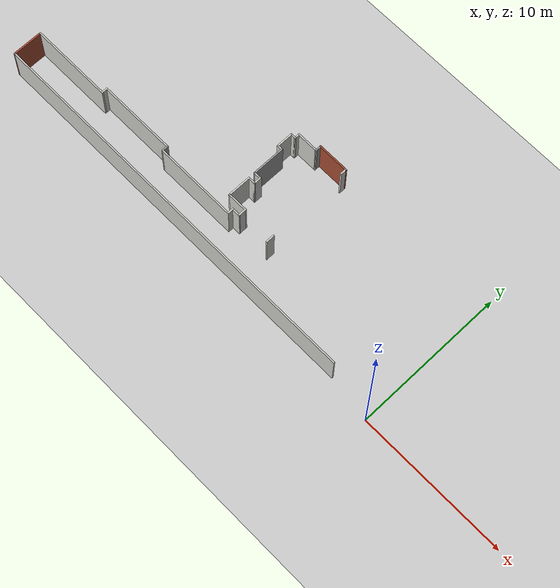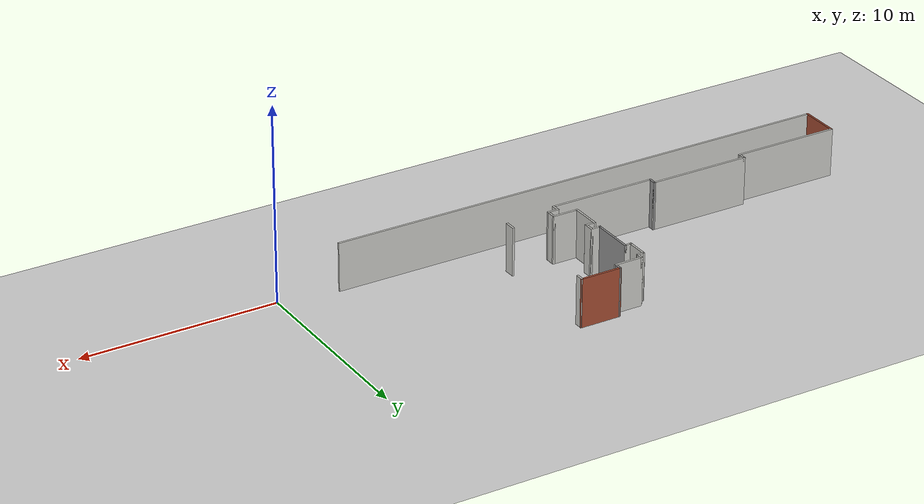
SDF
<sdf version="1.7">
 <world name="default">
  <model name="ground_plane">
   <static>1</static>
   <link name="link">
    <collision name="collision">
     <geometry><plane><normal>0 0 1</normal><size>100 100</size></plane></geometry>
     <surface><friction><ode><mu>100</mu><mu2>50</mu2></ode></friction></surface>
    </collision>
    <visual name="visual">
     <cast_shadows>0</cast_shadows>
     <geometry><plane><normal>0 0 1</normal><size>100 100</size></plane></geometry>
     <material>
      <script><uri>file://media/materials/scripts/gazebo.material</uri><name>Gazebo/Grey</name></script>
     </material>
    </visual>
   </link>
  </model>
  <model name="miraikan_5F_gate_and_elevator">
   <link name="Wall_110">
    <pose>-7.54992 11.385 0 0 -0 1.57125</pose>
    <visual name="Wall_110_Visual">
     <pose>0 0 1.25 0 -0 0</pose>
     <geometry><box><size>0.45 0.1 2.5</size></box></geometry>
     <material>
      <script><uri>file://media/materials/scripts/gazebo.material</uri><name>Gazebo/CeilingTiled</name></script>
      <ambient>1 1 1 1</ambient>
      <shader type="pixel"/>
     </material>
     <meta><layer>0</layer></meta>
    </visual>
    <collision name="Wall_110_Collision">
     <pose>0 0 1.25 0 -0 0</pose>
     <geometry><box><size>0.45 0.1 2.5</size></box></geometry>
     <surface>
      <friction>
       <ode><mu>1</mu><mu2>1</mu2><fdir1>0 0 0</fdir1><slip1>0</slip1><slip2>0</slip2></ode>
       <torsional>
        <coefficient>1</coefficient>
        <patch_radius>0</patch_radius>
        <surface_radius>0</surface_radius>
        <use_patch_radius>1</use_patch_radius>
        <ode><slip>0</slip></ode>
       </torsional>
      </friction>
      <bounce><restitution_coefficient>0</restitution_coefficient><threshold>1e+06</threshold></bounce>
      <contact>
       <collide_without_contact>0</collide_without_contact>
       <collide_without_contact_bitmask>1</collide_without_contact_bitmask>
       <collide_bitmask>1</collide_bitmask>
       <ode>
        <soft_cfm>0</soft_cfm>
        <soft_erp>0.2</soft_erp>
        <kp>1e+13</kp>
        <kd>1</kd>
        <max_vel>0.01</max_vel>
        <min_depth>0</min_depth>
       </ode>
       <bullet>
        <split_impulse>1</split_impulse>
        <split_impulse_penetration_threshold>-0.01</split_impulse_penetration_threshold>
        <soft_cfm>0</soft_cfm>
        <soft_erp>0.2</soft_erp>
        <kp>1e+13</kp>
        <kd>1</kd>
       </bullet>
      </contact>
     </surface>
    </collision>
   </link>
   <link name="Wall_136">
    <pose>-7.45991 5.57 0 0 0 -1.57043</pose>
    <visual name="Wall_136_Visual">
     <pose>0 0 1.25 0 -0 0</pose>
     <geometry><box><size>0.58 0.1 2.5</size></box></geometry>
     <material>
      <script><uri>file://media/materials/scripts/gazebo.material</uri><name>Gazebo/CeilingTiled</name></script>
      <ambient>1 1 1 1</ambient>
      <shader type="pixel"/>
     </material>
     <meta><layer>0</layer></meta>
    </visual>
    <collision name="Wall_136_Collision">
     <pose>0 0 1.25 0 -0 0</pose>
     <geometry><box><size>0.58 0.1 2.5</size></box></geometry>
     <surface>
      <friction>
       <ode><mu>1</mu><mu2>1</mu2><fdir1>0 0 0</fdir1><slip1>0</slip1><slip2>0</slip2></ode>
       <torsional>
        <coefficient>1</coefficient>
        <patch_radius>0</patch_radius>
        <surface_radius>0</surface_radius>
        <use_patch_radius>1</use_patch_radius>
        <ode><slip>0</slip></ode>
       </torsional>
      </friction>
      <bounce><restitution_coefficient>0</restitution_coefficient><threshold>1e+06</threshold></bounce>
      <contact>
       <collide_without_contact>0</collide_without_contact>
       <collide_without_contact_bitmask>1</collide_without_contact_bitmask>
       <collide_bitmask>1</collide_bitmask>
       <ode>
        <soft_cfm>0</soft_cfm>
        <soft_erp>0.2</soft_erp>
        <kp>1e+13</kp>
        <kd>1</kd>
        <max_vel>0.01</max_vel>
        <min_depth>0</min_depth>
       </ode>
       <bullet>
        <split_impulse>1</split_impulse>
        <split_impulse_penetration_threshold>-0.01</split_impulse_penetration_threshold>
        <soft_cfm>0</soft_cfm>
        <soft_erp>0.2</soft_erp>
        <kp>1e+13</kp>
        <kd>1</kd>
       </bullet>
      </contact>
     </surface>
    </collision>
   </link>
   <link name="Wall_219">
    <pose>-8.56 11.56 0 0 -0 0</pose>
    <visual name="Wall_219_Visual">
     <pose>0 0 1.25 0 -0 0</pose>
     <geometry><box><size>2.12016 0.1 2.5</size></box></geometry>
     <material>
      <script><uri>file://media/materials/scripts/gazebo.material</uri><name>Gazebo/Bricks</name></script>
      <ambient>1 1 1 1</ambient>
      <shader type="pixel"/>
     </material>
     <meta><layer>0</layer></meta>
    </visual>
    <collision name="Wall_219_Collision">
     <pose>0 0 1.25 0 -0 0</pose>
     <geometry><box><size>2.12016 0.1 2.5</size></box></geometry>
     <surface>
      <friction>
       <ode><mu>1</mu><mu2>1</mu2><fdir1>0 0 0</fdir1><slip1>0</slip1><slip2>0</slip2></ode>
       <torsional>
        <coefficient>1</coefficient>
        <patch_radius>0</patch_radius>
        <surface_radius>0</surface_radius>
        <use_patch_radius>1</use_patch_radius>
        <ode><slip>0</slip></ode>
       </torsional>
      </friction>
      <bounce><restitution_coefficient>0</restitution_coefficient><threshold>1e+06</threshold></bounce>
      <contact>
       <collide_without_contact>0</collide_without_contact>
       <collide_without_contact_bitmask>1</collide_without_contact_bitmask>
       <collide_bitmask>1</collide_bitmask>
       <ode>
        <soft_cfm>0</soft_cfm>
        <soft_erp>0.2</soft_erp>
        <kp>1e+13</kp>
        <kd>1</kd>
        <max_vel>0.01</max_vel>
        <min_depth>0</min_depth>
       </ode>
       <bullet>
        <split_impulse>1</split_impulse>
        <split_impulse_penetration_threshold>-0.01</split_impulse_penetration_threshold>
        <soft_cfm>0</soft_cfm>
        <soft_erp>0.2</soft_erp>
        <kp>1e+13</kp>
        <kd>1</kd>
       </bullet>
      </contact>
     </surface>
    </collision>
   </link>
   <link name="Wall_44">
    <pose>-10.9498 11.055 0 0 0 -1.5708</pose>
    <visual name="Wall_44_Visual">
     <pose>0 0 1.25 0 -0 0</pose>
     <geometry><box><size>0.41 0.1 2.5</size></box></geometry>
     <material>
      <script><uri>file://media/materials/scripts/gazebo.material</uri><name>Gazebo/CeilingTiled</name></script>
      <ambient>1 1 1 1</ambient>
      <shader type="pixel"/>
     </material>
     <meta><layer>0</layer></meta>
    </visual>
    <collision name="Wall_44_Collision">
     <pose>0 0 1.25 0 -0 0</pose>
     <geometry><box><size>0.41 0.1 2.5</size></box></geometry>
     <surface>
      <friction>
       <ode><mu>1</mu><mu2>1</mu2><fdir1>0 0 0</fdir1><slip1>0</slip1><slip2>0</slip2></ode>
       <torsional>
        <coefficient>1</coefficient>
        <patch_radius>0</patch_radius>
        <surface_radius>0</surface_radius>
        <use_patch_radius>1</use_patch_radius>
        <ode><slip>0</slip></ode>
       </torsional>
      </friction>
      <bounce><restitution_coefficient>0</restitution_coefficient><threshold>1e+06</threshold></bounce>
      <contact>
       <collide_without_contact>0</collide_without_contact>
       <collide_without_contact_bitmask>1</collide_without_contact_bitmask>
       <collide_bitmask>1</collide_bitmask>
       <ode>
        <soft_cfm>0</soft_cfm>
        <soft_erp>0.2</soft_erp>
        <kp>1e+13</kp>
        <kd>1</kd>
        <max_vel>0.01</max_vel>
        <min_depth>0</min_depth>
       </ode>
       <bullet>
        <split_impulse>1</split_impulse>
        <split_impulse_penetration_threshold>-0.01</split_impulse_penetration_threshold>
        <soft_cfm>0</soft_cfm>
        <soft_erp>0.2</soft_erp>
        <kp>1e+13</kp>
        <kd>1</kd>
       </bullet>
      </contact>
     </surface>
    </collision>
   </link>
   <link name="Wall_47">
    <pose>-11.1048 10.9 0 0 -0 3.14159</pose>
    <visual name="Wall_47_Visual">
     <pose>0 0 1.25 0 -0 0</pose>
     <geometry><box><size>0.41 0.1 2.5</size></box></geometry>
     <material>
      <script><uri>file://media/materials/scripts/gazebo.material</uri><name>Gazebo/CeilingTiled</name></script>
      <ambient>1 1 1 1</ambient>
      <shader type="pixel"/>
     </material>
     <meta><layer>0</layer></meta>
    </visual>
    <collision name="Wall_47_Collision">
     <pose>0 0 1.25 0 -0 0</pose>
     <geometry><box><size>0.41 0.1 2.5</size></box></geometry>
     <surface>
      <friction>
       <ode><mu>1</mu><mu2>1</mu2><fdir1>0 0 0</fdir1><slip1>0</slip1><slip2>0</slip2></ode>
       <torsional>
        <coefficient>1</coefficient>
        <patch_radius>0</patch_radius>
        <surface_radius>0</surface_radius>
        <use_patch_radius>1</use_patch_radius>
        <ode><slip>0</slip></ode>
       </torsional>
      </friction>
      <bounce><restitution_coefficient>0</restitution_coefficient><threshold>1e+06</threshold></bounce>
      <contact>
       <collide_without_contact>0</collide_without_contact>
       <collide_without_contact_bitmask>1</collide_without_contact_bitmask>
       <collide_bitmask>1</collide_bitmask>
       <ode>
        <soft_cfm>0</soft_cfm>
        <soft_erp>0.2</soft_erp>
        <kp>1e+13</kp>
        <kd>1</kd>
        <max_vel>0.01</max_vel>
        <min_depth>0</min_depth>
       </ode>
       <bullet>
        <split_impulse>1</split_impulse>
        <split_impulse_penetration_threshold>-0.01</split_impulse_penetration_threshold>
        <soft_cfm>0</soft_cfm>
        <soft_erp>0.2</soft_erp>
        <kp>1e+13</kp>
        <kd>1</kd>
       </bullet>
      </contact>
     </surface>
    </collision>
   </link>
   <link name="Wall_49">
    <pose>-11.2598 10.375 0 0 0 -1.5708</pose>
    <visual name="Wall_49_Visual">
     <pose>0 0 1.25 0 -0 0</pose>
     <geometry><box><size>1.15 0.1 2.5</size></box></geometry>
     <material>
      <script><uri>file://media/materials/scripts/gazebo.material</uri><name>Gazebo/CeilingTiled</name></script>
      <ambient>1 1 1 1</ambient>
      <shader type="pixel"/>
     </material>
     <meta><layer>0</layer></meta>
    </visual>
    <collision name="Wall_49_Collision">
     <pose>0 0 1.25 0 -0 0</pose>
     <geometry><box><size>1.15 0.1 2.5</size></box></geometry>
     <surface>
      <friction>
       <ode><mu>1</mu><mu2>1</mu2><fdir1>0 0 0</fdir1><slip1>0</slip1><slip2>0</slip2></ode>
       <torsional>
        <coefficient>1</coefficient>
        <patch_radius>0</patch_radius>
        <surface_radius>0</surface_radius>
        <use_patch_radius>1</use_patch_radius>
        <ode><slip>0</slip></ode>
       </torsional>
      </friction>
      <bounce><restitution_coefficient>0</restitution_coefficient><threshold>1e+06</threshold></bounce>
      <contact>
       <collide_without_contact>0</collide_without_contact>
       <collide_without_contact_bitmask>1</collide_without_contact_bitmask>
       <collide_bitmask>1</collide_bitmask>
       <ode>
        <soft_cfm>0</soft_cfm>
        <soft_erp>0.2</soft_erp>
        <kp>1e+13</kp>
        <kd>1</kd>
        <max_vel>0.01</max_vel>
        <min_depth>0</min_depth>
       </ode>
       <bullet>
        <split_impulse>1</split_impulse>
        <split_impulse_penetration_threshold>-0.01</split_impulse_penetration_threshold>
        <soft_cfm>0</soft_cfm>
        <soft_erp>0.2</soft_erp>
        <kp>1e+13</kp>
        <kd>1</kd>
       </bullet>
      </contact>
     </surface>
    </collision>
   </link>
   <link name="Wall_51">
    <pose>-11.1048 9.84996 0 0 -0 0</pose>
    <visual name="Wall_51_Visual">
     <pose>0 0 1.25 0 -0 0</pose>
     <geometry><box><size>0.41 0.1 2.5</size></box></geometry>
     <material>
      <script><uri>file://media/materials/scripts/gazebo.material</uri><name>Gazebo/CeilingTiled</name></script>
      <ambient>1 1 1 1</ambient>
      <shader type="pixel"/>
     </material>
     <meta><layer>0</layer></meta>
    </visual>
    <collision name="Wall_51_Collision">
     <pose>0 0 1.25 0 -0 0</pose>
     <geometry><box><size>0.41 0.1 2.5</size></box></geometry>
     <surface>
      <friction>
       <ode><mu>1</mu><mu2>1</mu2><fdir1>0 0 0</fdir1><slip1>0</slip1><slip2>0</slip2></ode>
       <torsional>
        <coefficient>1</coefficient>
        <patch_radius>0</patch_radius>
        <surface_radius>0</surface_radius>
        <use_patch_radius>1</use_patch_radius>
        <ode><slip>0</slip></ode>
       </torsional>
      </friction>
      <bounce><restitution_coefficient>0</restitution_coefficient><threshold>1e+06</threshold></bounce>
      <contact>
       <collide_without_contact>0</collide_without_contact>
       <collide_without_contact_bitmask>1</collide_without_contact_bitmask>
       <collide_bitmask>1</collide_bitmask>
       <ode>
        <soft_cfm>0</soft_cfm>
        <soft_erp>0.2</soft_erp>
        <kp>1e+13</kp>
        <kd>1</kd>
        <max_vel>0.01</max_vel>
        <min_depth>0</min_depth>
       </ode>
       <bullet>
        <split_impulse>1</split_impulse>
        <split_impulse_penetration_threshold>-0.01</split_impulse_penetration_threshold>
        <soft_cfm>0</soft_cfm>
        <soft_erp>0.2</soft_erp>
        <kp>1e+13</kp>
        <kd>1</kd>
       </bullet>
      </contact>
     </surface>
    </collision>
   </link>
   <link name="Wall_53">
    <pose>-10.9498 8.79496 0 0 0 -1.5708</pose>
    <visual name="Wall_53_Visual">
     <pose>0 0 1.25 0 -0 0</pose>
     <geometry><box><size>2.21 0.1 2.5</size></box></geometry>
     <material>
      <script><uri>file://media/materials/scripts/gazebo.material</uri><name>Gazebo/Grey</name></script>
      <ambient>1 1 1 1</ambient>
      <shader type="pixel"/>
     </material>
     <meta><layer>0</layer></meta>
    </visual>
    <collision name="Wall_53_Collision">
     <pose>0 0 1.25 0 -0 0</pose>
     <geometry><box><size>2.21 0.1 2.5</size></box></geometry>
     <surface>
      <friction>
       <ode><mu>1</mu><mu2>1</mu2><fdir1>0 0 0</fdir1><slip1>0</slip1><slip2>0</slip2></ode>
       <torsional>
        <coefficient>1</coefficient>
        <patch_radius>0</patch_radius>
        <surface_radius>0</surface_radius>
        <use_patch_radius>1</use_patch_radius>
        <ode><slip>0</slip></ode>
       </torsional>
      </friction>
      <bounce><restitution_coefficient>0</restitution_coefficient><threshold>1e+06</threshold></bounce>
      <contact>
       <collide_without_contact>0</collide_without_contact>
       <collide_without_contact_bitmask>1</collide_without_contact_bitmask>
       <collide_bitmask>1</collide_bitmask>
       <ode>
        <soft_cfm>0</soft_cfm>
        <soft_erp>0.2</soft_erp>
        <kp>1e+13</kp>
        <kd>1</kd>
        <max_vel>0.01</max_vel>
        <min_depth>0</min_depth>
       </ode>
       <bullet>
        <split_impulse>1</split_impulse>
        <split_impulse_penetration_threshold>-0.01</split_impulse_penetration_threshold>
        <soft_cfm>0</soft_cfm>
        <soft_erp>0.2</soft_erp>
        <kp>1e+13</kp>
        <kd>1</kd>
       </bullet>
      </contact>
     </surface>
    </collision>
   </link>
   <link name="Wall_55">
    <pose>-10.7248 7.73996 0 0 -0 0</pose>
    <visual name="Wall_55_Visual">
     <pose>0 0 1.25 0 -0 0</pose>
     <geometry><box><size>0.55 0.1 2.5</size></box></geometry>
     <material>
      <script><uri>file://media/materials/scripts/gazebo.material</uri><name>Gazebo/CeilingTiled</name></script>
      <ambient>1 1 1 1</ambient>
      <shader type="pixel"/>
     </material>
     <meta><layer>0</layer></meta>
    </visual>
    <collision name="Wall_55_Collision">
     <pose>0 0 1.25 0 -0 0</pose>
     <geometry><box><size>0.55 0.1 2.5</size></box></geometry>
     <surface>
      <friction>
       <ode><mu>1</mu><mu2>1</mu2><fdir1>0 0 0</fdir1><slip1>0</slip1><slip2>0</slip2></ode>
       <torsional>
        <coefficient>1</coefficient>
        <patch_radius>0</patch_radius>
        <surface_radius>0</surface_radius>
        <use_patch_radius>1</use_patch_radius>
        <ode><slip>0</slip></ode>
       </torsional>
      </friction>
      <bounce><restitution_coefficient>0</restitution_coefficient><threshold>1e+06</threshold></bounce>
      <contact>
       <collide_without_contact>0</collide_without_contact>
       <collide_without_contact_bitmask>1</collide_without_contact_bitmask>
       <collide_bitmask>1</collide_bitmask>
       <ode>
        <soft_cfm>0</soft_cfm>
        <soft_erp>0.2</soft_erp>
        <kp>1e+13</kp>
        <kd>1</kd>
        <max_vel>0.01</max_vel>
        <min_depth>0</min_depth>
       </ode>
       <bullet>
        <split_impulse>1</split_impulse>
        <split_impulse_penetration_threshold>-0.01</split_impulse_penetration_threshold>
        <soft_cfm>0</soft_cfm>
        <soft_erp>0.2</soft_erp>
        <kp>1e+13</kp>
        <kd>1</kd>
       </bullet>
      </contact>
     </surface>
    </collision>
   </link>
   <link name="Wall_57">
    <pose>-10.4998 7.51496 0 0 0 -1.5708</pose>
    <visual name="Wall_57_Visual">
     <pose>0 0 1.25 0 -0 0</pose>
     <geometry><box><size>0.55 0.1 2.5</size></box></geometry>
     <material>
      <script><uri>file://media/materials/scripts/gazebo.material</uri><name>Gazebo/CeilingTiled</name></script>
      <ambient>1 1 1 1</ambient>
      <shader type="pixel"/>
     </material>
     <meta><layer>0</layer></meta>
    </visual>
    <collision name="Wall_57_Collision">
     <pose>0 0 1.25 0 -0 0</pose>
     <geometry><box><size>0.55 0.1 2.5</size></box></geometry>
     <surface>
      <friction>
       <ode><mu>1</mu><mu2>1</mu2><fdir1>0 0 0</fdir1><slip1>0</slip1><slip2>0</slip2></ode>
       <torsional>
        <coefficient>1</coefficient>
        <patch_radius>0</patch_radius>
        <surface_radius>0</surface_radius>
        <use_patch_radius>1</use_patch_radius>
        <ode><slip>0</slip></ode>
       </torsional>
      </friction>
      <bounce><restitution_coefficient>0</restitution_coefficient><threshold>1e+06</threshold></bounce>
      <contact>
       <collide_without_contact>0</collide_without_contact>
       <collide_without_contact_bitmask>1</collide_without_contact_bitmask>
       <collide_bitmask>1</collide_bitmask>
       <ode>
        <soft_cfm>0</soft_cfm>
        <soft_erp>0.2</soft_erp>
        <kp>1e+13</kp>
        <kd>1</kd>
        <max_vel>0.01</max_vel>
        <min_depth>0</min_depth>
       </ode>
       <bullet>
        <split_impulse>1</split_impulse>
        <split_impulse_penetration_threshold>-0.01</split_impulse_penetration_threshold>
        <soft_cfm>0</soft_cfm>
        <soft_erp>0.2</soft_erp>
        <kp>1e+13</kp>
        <kd>1</kd>
       </bullet>
      </contact>
     </surface>
    </collision>
   </link>
   <link name="Wall_59">
    <pose>-10.7248 7.28996 0 0 -0 3.14159</pose>
    <visual name="Wall_59_Visual">
     <pose>0 0 1.25 0 -0 0</pose>
     <geometry><box><size>0.55 0.1 2.5</size></box></geometry>
     <material>
      <script><uri>file://media/materials/scripts/gazebo.material</uri><name>Gazebo/CeilingTiled</name></script>
      <ambient>1 1 1 1</ambient>
      <shader type="pixel"/>
     </material>
     <meta><layer>0</layer></meta>
    </visual>
    <collision name="Wall_59_Collision">
     <pose>0 0 1.25 0 -0 0</pose>
     <geometry><box><size>0.55 0.1 2.5</size></box></geometry>
     <surface>
      <friction>
       <ode><mu>1</mu><mu2>1</mu2><fdir1>0 0 0</fdir1><slip1>0</slip1><slip2>0</slip2></ode>
       <torsional>
        <coefficient>1</coefficient>
        <patch_radius>0</patch_radius>
        <surface_radius>0</surface_radius>
        <use_patch_radius>1</use_patch_radius>
        <ode><slip>0</slip></ode>
       </torsional>
      </friction>
      <bounce><restitution_coefficient>0</restitution_coefficient><threshold>1e+06</threshold></bounce>
      <contact>
       <collide_without_contact>0</collide_without_contact>
       <collide_without_contact_bitmask>1</collide_without_contact_bitmask>
       <collide_bitmask>1</collide_bitmask>
       <ode>
        <soft_cfm>0</soft_cfm>
        <soft_erp>0.2</soft_erp>
        <kp>1e+13</kp>
        <kd>1</kd>
        <max_vel>0.01</max_vel>
        <min_depth>0</min_depth>
       </ode>
       <bullet>
        <split_impulse>1</split_impulse>
        <split_impulse_penetration_threshold>-0.01</split_impulse_penetration_threshold>
        <soft_cfm>0</soft_cfm>
        <soft_erp>0.2</soft_erp>
        <kp>1e+13</kp>
        <kd>1</kd>
       </bullet>
      </contact>
     </surface>
    </collision>
   </link>
   <link name="Wall_61">
    <pose>-10.9498 6.54496 0 0 0 -1.5708</pose>
    <visual name="Wall_61_Visual">
     <pose>0 0 1.25 0 -0 0</pose>
     <geometry><box><size>1.59 0.1 2.5</size></box></geometry>
     <material>
      <script><uri>file://media/materials/scripts/gazebo.material</uri><name>Gazebo/CeilingTiled</name></script>
      <ambient>1 1 1 1</ambient>
      <shader type="pixel"/>
     </material>
     <meta><layer>0</layer></meta>
    </visual>
    <collision name="Wall_61_Collision">
     <pose>0 0 1.25 0 -0 0</pose>
     <geometry><box><size>1.59 0.1 2.5</size></box></geometry>
     <surface>
      <friction>
       <ode><mu>1</mu><mu2>1</mu2><fdir1>0 0 0</fdir1><slip1>0</slip1><slip2>0</slip2></ode>
       <torsional>
        <coefficient>1</coefficient>
        <patch_radius>0</patch_radius>
        <surface_radius>0</surface_radius>
        <use_patch_radius>1</use_patch_radius>
        <ode><slip>0</slip></ode>
       </torsional>
      </friction>
      <bounce><restitution_coefficient>0</restitution_coefficient><threshold>1e+06</threshold></bounce>
      <contact>
       <collide_without_contact>0</collide_without_contact>
       <collide_without_contact_bitmask>1</collide_without_contact_bitmask>
       <collide_bitmask>1</collide_bitmask>
       <ode>
        <soft_cfm>0</soft_cfm>
        <soft_erp>0.2</soft_erp>
        <kp>1e+13</kp>
        <kd>1</kd>
        <max_vel>0.01</max_vel>
        <min_depth>0</min_depth>
       </ode>
       <bullet>
        <split_impulse>1</split_impulse>
        <split_impulse_penetration_threshold>-0.01</split_impulse_penetration_threshold>
        <soft_cfm>0</soft_cfm>
        <soft_erp>0.2</soft_erp>
        <kp>1e+13</kp>
        <kd>1</kd>
       </bullet>
      </contact>
     </surface>
    </collision>
   </link>
   <link name="Wall_63">
    <pose>-10.3149 5.79998 0 0 -0 2.9e-05</pose>
    <visual name="Wall_63_Visual">
     <pose>0 0 1.25 0 -0 0</pose>
     <geometry><box><size>1.37 0.1 2.5</size></box></geometry>
     <material>
      <script><uri>file://media/materials/scripts/gazebo.material</uri><name>Gazebo/CeilingTiled</name></script>
      <ambient>1 1 1 1</ambient>
      <shader type="pixel"/>
     </material>
     <meta><layer>0</layer></meta>
    </visual>
    <collision name="Wall_63_Collision">
     <pose>0 0 1.25 0 -0 0</pose>
     <geometry><box><size>1.37 0.1 2.5</size></box></geometry>
     <surface>
      <friction>
       <ode><mu>1</mu><mu2>1</mu2><fdir1>0 0 0</fdir1><slip1>0</slip1><slip2>0</slip2></ode>
       <torsional>
        <coefficient>1</coefficient>
        <patch_radius>0</patch_radius>
        <surface_radius>0</surface_radius>
        <use_patch_radius>1</use_patch_radius>
        <ode><slip>0</slip></ode>
       </torsional>
      </friction>
      <bounce><restitution_coefficient>0</restitution_coefficient><threshold>1e+06</threshold></bounce>
      <contact>
       <collide_without_contact>0</collide_without_contact>
       <collide_without_contact_bitmask>1</collide_without_contact_bitmask>
       <collide_bitmask>1</collide_bitmask>
       <ode>
        <soft_cfm>0</soft_cfm>
        <soft_erp>0.2</soft_erp>
        <kp>1e+13</kp>
        <kd>1</kd>
        <max_vel>0.01</max_vel>
        <min_depth>0</min_depth>
       </ode>
       <bullet>
        <split_impulse>1</split_impulse>
        <split_impulse_penetration_threshold>-0.01</split_impulse_penetration_threshold>
        <soft_cfm>0</soft_cfm>
        <soft_erp>0.2</soft_erp>
        <kp>1e+13</kp>
        <kd>1</kd>
       </bullet>
      </contact>
     </surface>
    </collision>
   </link>
   <link name="Wall_65">
    <pose>-10.2598 11.21 0 0 -0 0</pose>
    <visual name="Wall_65_Visual">
     <pose>0 0 1.25 0 -0 0</pose>
     <geometry><box><size>1.48 0.1 2.5</size></box></geometry>
     <material>
      <script><uri>file://media/materials/scripts/gazebo.material</uri><name>Gazebo/CeilingTiled</name></script>
      <ambient>1 1 1 1</ambient>
      <shader type="pixel"/>
     </material>
     <meta><layer>0</layer></meta>
    </visual>
    <collision name="Wall_65_Collision">
     <pose>0 0 1.25 0 -0 0</pose>
     <geometry><box><size>1.48 0.1 2.5</size></box></geometry>
     <surface>
      <friction>
       <ode><mu>1</mu><mu2>1</mu2><fdir1>0 0 0</fdir1><slip1>0</slip1><slip2>0</slip2></ode>
       <torsional>
        <coefficient>1</coefficient>
        <patch_radius>0</patch_radius>
        <surface_radius>0</surface_radius>
        <use_patch_radius>1</use_patch_radius>
        <ode><slip>0</slip></ode>
       </torsional>
      </friction>
      <bounce><restitution_coefficient>0</restitution_coefficient><threshold>1e+06</threshold></bounce>
      <contact>
       <collide_without_contact>0</collide_without_contact>
       <collide_without_contact_bitmask>1</collide_without_contact_bitmask>
       <collide_bitmask>1</collide_bitmask>
       <ode>
        <soft_cfm>0</soft_cfm>
        <soft_erp>0.2</soft_erp>
        <kp>1e+13</kp>
        <kd>1</kd>
        <max_vel>0.01</max_vel>
        <min_depth>0</min_depth>
       </ode>
       <bullet>
        <split_impulse>1</split_impulse>
        <split_impulse_penetration_threshold>-0.01</split_impulse_penetration_threshold>
        <soft_cfm>0</soft_cfm>
        <soft_erp>0.2</soft_erp>
        <kp>1e+13</kp>
        <kd>1</kd>
       </bullet>
      </contact>
     </surface>
    </collision>
   </link>
   <link name="Wall_67">
    <pose>-9.56992 11.385 0 0 -0 1.57125</pose>
    <visual name="Wall_67_Visual">
     <pose>0 0 1.25 0 -0 0</pose>
     <geometry><box><size>0.45 0.1 2.5</size></box></geometry>
     <material>
      <script><uri>file://media/materials/scripts/gazebo.material</uri><name>Gazebo/Grey</name></script>
      <ambient>1 1 1 1</ambient>
      <shader type="pixel"/>
     </material>
     <meta><layer>0</layer></meta>
    </visual>
    <collision name="Wall_67_Collision">
     <pose>0 0 1.25 0 -0 0</pose>
     <geometry><box><size>0.45 0.1 2.5</size></box></geometry>
     <surface>
      <friction>
       <ode><mu>1</mu><mu2>1</mu2><fdir1>0 0 0</fdir1><slip1>0</slip1><slip2>0</slip2></ode>
       <torsional>
        <coefficient>1</coefficient>
        <patch_radius>0</patch_radius>
        <surface_radius>0</surface_radius>
        <use_patch_radius>1</use_patch_radius>
        <ode><slip>0</slip></ode>
       </torsional>
      </friction>
      <bounce><restitution_coefficient>0</restitution_coefficient><threshold>1e+06</threshold></bounce>
      <contact>
       <collide_without_contact>0</collide_without_contact>
       <collide_without_contact_bitmask>1</collide_without_contact_bitmask>
       <collide_bitmask>1</collide_bitmask>
       <ode>
        <soft_cfm>0</soft_cfm>
        <soft_erp>0.2</soft_erp>
        <kp>1e+13</kp>
        <kd>1</kd>
        <max_vel>0.01</max_vel>
        <min_depth>0</min_depth>
       </ode>
       <bullet>
        <split_impulse>1</split_impulse>
        <split_impulse_penetration_threshold>-0.01</split_impulse_penetration_threshold>
        <soft_cfm>0</soft_cfm>
        <soft_erp>0.2</soft_erp>
        <kp>1e+13</kp>
        <kd>1</kd>
       </bullet>
      </contact>
     </surface>
    </collision>
   </link>
   <link name="Wall_75">
    <pose>-9.68 5.56 0 0 0 -1.5708</pose>
    <visual name="Wall_75_Visual">
     <pose>0 0 1.25 0 -0 0</pose>
     <geometry><box><size>0.58 0.1 2.5</size></box></geometry>
     <material>
      <script><uri>file://media/materials/scripts/gazebo.material</uri><name>Gazebo/CeilingTiled</name></script>
      <ambient>1 1 1 1</ambient>
      <shader type="pixel"/>
     </material>
     <meta><layer>0</layer></meta>
    </visual>
    <collision name="Wall_75_Collision">
     <pose>0 0 1.25 0 -0 0</pose>
     <geometry><box><size>0.58 0.1 2.5</size></box></geometry>
     <surface>
      <friction>
       <ode><mu>1</mu><mu2>1</mu2><fdir1>0 0 0</fdir1><slip1>0</slip1><slip2>0</slip2></ode>
       <torsional>
        <coefficient>1</coefficient>
        <patch_radius>0</patch_radius>
        <surface_radius>0</surface_radius>
        <use_patch_radius>1</use_patch_radius>
        <ode><slip>0</slip></ode>
       </torsional>
      </friction>
      <bounce><restitution_coefficient>0</restitution_coefficient><threshold>1e+06</threshold></bounce>
      <contact>
       <collide_without_contact>0</collide_without_contact>
       <collide_without_contact_bitmask>1</collide_without_contact_bitmask>
       <collide_bitmask>1</collide_bitmask>
       <ode>
        <soft_cfm>0</soft_cfm>
        <soft_erp>0.2</soft_erp>
        <kp>1e+13</kp>
        <kd>1</kd>
        <max_vel>0.01</max_vel>
        <min_depth>0</min_depth>
       </ode>
       <bullet>
        <split_impulse>1</split_impulse>
        <split_impulse_penetration_threshold>-0.01</split_impulse_penetration_threshold>
        <soft_cfm>0</soft_cfm>
        <soft_erp>0.2</soft_erp>
        <kp>1e+13</kp>
        <kd>1</kd>
       </bullet>
      </contact>
     </surface>
    </collision>
   </link>
   <link name="Wall_79">
    <pose>-9.935 5.32 0 0 -0 3.14159</pose>
    <visual name="Wall_79_Visual">
     <pose>0 0 1.25 0 -0 0</pose>
     <geometry><box><size>0.61 0.1 2.5</size></box></geometry>
     <material>
      <script><uri>file://media/materials/scripts/gazebo.material</uri><name>Gazebo/CeilingTiled</name></script>
      <ambient>1 1 1 1</ambient>
      <shader type="pixel"/>
     </material>
     <meta><layer>0</layer></meta>
    </visual>
    <collision name="Wall_79_Collision">
     <pose>0 0 1.25 0 -0 0</pose>
     <geometry><box><size>0.61 0.1 2.5</size></box></geometry>
     <surface>
      <friction>
       <ode><mu>1</mu><mu2>1</mu2><fdir1>0 0 0</fdir1><slip1>0</slip1><slip2>0</slip2></ode>
       <torsional>
        <coefficient>1</coefficient>
        <patch_radius>0</patch_radius>
        <surface_radius>0</surface_radius>
        <use_patch_radius>1</use_patch_radius>
        <ode><slip>0</slip></ode>
       </torsional>
      </friction>
      <bounce><restitution_coefficient>0</restitution_coefficient><threshold>1e+06</threshold></bounce>
      <contact>
       <collide_without_contact>0</collide_without_contact>
       <collide_without_contact_bitmask>1</collide_without_contact_bitmask>
       <collide_bitmask>1</collide_bitmask>
       <ode>
        <soft_cfm>0</soft_cfm>
        <soft_erp>0.2</soft_erp>
        <kp>1e+13</kp>
        <kd>1</kd>
        <max_vel>0.01</max_vel>
        <min_depth>0</min_depth>
       </ode>
       <bullet>
        <split_impulse>1</split_impulse>
        <split_impulse_penetration_threshold>-0.01</split_impulse_penetration_threshold>
        <soft_cfm>0</soft_cfm>
        <soft_erp>0.2</soft_erp>
        <kp>1e+13</kp>
        <kd>1</kd>
       </bullet>
      </contact>
     </surface>
    </collision>
   </link>
   <link name="Wall_81">
    <pose>-10.19 5.145 0 0 0 -1.5708</pose>
    <visual name="Wall_81_Visual">
     <pose>0 0 1.25 0 -0 0</pose>
     <geometry><box><size>0.45 0.1 2.5</size></box></geometry>
     <material>
      <script><uri>file://media/materials/scripts/gazebo.material</uri><name>Gazebo/CeilingTiled</name></script>
      <ambient>1 1 1 1</ambient>
      <shader type="pixel"/>
     </material>
     <meta><layer>0</layer></meta>
    </visual>
    <collision name="Wall_81_Collision">
     <pose>0 0 1.25 0 -0 0</pose>
     <geometry><box><size>0.45 0.1 2.5</size></box></geometry>
     <surface>
      <friction>
       <ode><mu>1</mu><mu2>1</mu2><fdir1>0 0 0</fdir1><slip1>0</slip1><slip2>0</slip2></ode>
       <torsional>
        <coefficient>1</coefficient>
        <patch_radius>0</patch_radius>
        <surface_radius>0</surface_radius>
        <use_patch_radius>1</use_patch_radius>
        <ode><slip>0</slip></ode>
       </torsional>
      </friction>
      <bounce><restitution_coefficient>0</restitution_coefficient><threshold>1e+06</threshold></bounce>
      <contact>
       <collide_without_contact>0</collide_without_contact>
       <collide_without_contact_bitmask>1</collide_without_contact_bitmask>
       <collide_bitmask>1</collide_bitmask>
       <ode>
        <soft_cfm>0</soft_cfm>
        <soft_erp>0.2</soft_erp>
        <kp>1e+13</kp>
        <kd>1</kd>
        <max_vel>0.01</max_vel>
        <min_depth>0</min_depth>
       </ode>
       <bullet>
        <split_impulse>1</split_impulse>
        <split_impulse_penetration_threshold>-0.01</split_impulse_penetration_threshold>
        <soft_cfm>0</soft_cfm>
        <soft_erp>0.2</soft_erp>
        <kp>1e+13</kp>
        <kd>1</kd>
       </bullet>
      </contact>
     </surface>
    </collision>
   </link>
   <link name="Wall_83">
    <pose>-12.875 4.97 0 0 -0 3.14159</pose>
    <visual name="Wall_83_Visual">
     <pose>0 0 1.25 0 -0 0</pose>
     <geometry><box><size>5.47 0.1 2.5</size></box></geometry>
     <material>
      <script><uri>file://media/materials/scripts/gazebo.material</uri><name>Gazebo/CeilingTiled</name></script>
      <ambient>1 1 1 1</ambient>
      <shader type="pixel"/>
     </material>
     <meta><layer>0</layer></meta>
    </visual>
    <collision name="Wall_83_Collision">
     <pose>0 0 1.25 0 -0 0</pose>
     <geometry><box><size>5.47 0.1 2.5</size></box></geometry>
     <surface>
      <friction>
       <ode><mu>1</mu><mu2>1</mu2><fdir1>0 0 0</fdir1><slip1>0</slip1><slip2>0</slip2></ode>
       <torsional>
        <coefficient>1</coefficient>
        <patch_radius>0</patch_radius>
        <surface_radius>0</surface_radius>
        <use_patch_radius>1</use_patch_radius>
        <ode><slip>0</slip></ode>
       </torsional>
      </friction>
      <bounce><restitution_coefficient>0</restitution_coefficient><threshold>1e+06</threshold></bounce>
      <contact>
       <collide_without_contact>0</collide_without_contact>
       <collide_without_contact_bitmask>1</collide_without_contact_bitmask>
       <collide_bitmask>1</collide_bitmask>
       <ode>
        <soft_cfm>0</soft_cfm>
        <soft_erp>0.2</soft_erp>
        <kp>1e+13</kp>
        <kd>1</kd>
        <max_vel>0.01</max_vel>
        <min_depth>0</min_depth>
       </ode>
       <bullet>
        <split_impulse>1</split_impulse>
        <split_impulse_penetration_threshold>-0.01</split_impulse_penetration_threshold>
        <soft_cfm>0</soft_cfm>
        <soft_erp>0.2</soft_erp>
        <kp>1e+13</kp>
        <kd>1</kd>
       </bullet>
      </contact>
     </surface>
    </collision>
   </link>
   <link name="Wall_85">
    <pose>-15.56 5.145 0 0 -0 1.5708</pose>
    <visual name="Wall_85_Visual">
     <pose>0 0 1.25 0 -0 0</pose>
     <geometry><box><size>0.45 0.1 2.5</size></box></geometry>
     <material>
      <script><uri>file://media/materials/scripts/gazebo.material</uri><name>Gazebo/Grey</name></script>
      <ambient>1 1 1 1</ambient>
      <shader type="pixel"/>
     </material>
     <meta><layer>0</layer></meta>
    </visual>
    <collision name="Wall_85_Collision">
     <pose>0 0 1.25 0 -0 0</pose>
     <geometry><box><size>0.45 0.1 2.5</size></box></geometry>
     <surface>
      <friction>
       <ode><mu>1</mu><mu2>1</mu2><fdir1>0 0 0</fdir1><slip1>0</slip1><slip2>0</slip2></ode>
       <torsional>
        <coefficient>1</coefficient>
        <patch_radius>0</patch_radius>
        <surface_radius>0</surface_radius>
        <use_patch_radius>1</use_patch_radius>
        <ode><slip>0</slip></ode>
       </torsional>
      </friction>
      <bounce><restitution_coefficient>0</restitution_coefficient><threshold>1e+06</threshold></bounce>
      <contact>
       <collide_without_contact>0</collide_without_contact>
       <collide_without_contact_bitmask>1</collide_without_contact_bitmask>
       <collide_bitmask>1</collide_bitmask>
       <ode>
        <soft_cfm>0</soft_cfm>
        <soft_erp>0.2</soft_erp>
        <kp>1e+13</kp>
        <kd>1</kd>
        <max_vel>0.01</max_vel>
        <min_depth>0</min_depth>
       </ode>
       <bullet>
        <split_impulse>1</split_impulse>
        <split_impulse_penetration_threshold>-0.01</split_impulse_penetration_threshold>
        <soft_cfm>0</soft_cfm>
        <soft_erp>0.2</soft_erp>
        <kp>1e+13</kp>
        <kd>1</kd>
       </bullet>
      </contact>
     </surface>
    </collision>
   </link>
   <link name="Wall_87">
    <pose>-18.11 5.32 0 0 -0 3.14159</pose>
    <visual name="Wall_87_Visual">
     <pose>0 0 1.25 0 -0 0</pose>
     <geometry><box><size>5.2 0.1 2.5</size></box></geometry>
     <material>
      <script><uri>file://media/materials/scripts/gazebo.material</uri><name>Gazebo/CeilingTiled</name></script>
      <ambient>1 1 1 1</ambient>
      <shader type="pixel"/>
     </material>
     <meta><layer>0</layer></meta>
    </visual>
    <collision name="Wall_87_Collision">
     <pose>0 0 1.25 0 -0 0</pose>
     <geometry><box><size>5.2 0.1 2.5</size></box></geometry>
     <surface>
      <friction>
       <ode><mu>1</mu><mu2>1</mu2><fdir1>0 0 0</fdir1><slip1>0</slip1><slip2>0</slip2></ode>
       <torsional>
        <coefficient>1</coefficient>
        <patch_radius>0</patch_radius>
        <surface_radius>0</surface_radius>
        <use_patch_radius>1</use_patch_radius>
        <ode><slip>0</slip></ode>
       </torsional>
      </friction>
      <bounce><restitution_coefficient>0</restitution_coefficient><threshold>1e+06</threshold></bounce>
      <contact>
       <collide_without_contact>0</collide_without_contact>
       <collide_without_contact_bitmask>1</collide_without_contact_bitmask>
       <collide_bitmask>1</collide_bitmask>
       <ode>
        <soft_cfm>0</soft_cfm>
        <soft_erp>0.2</soft_erp>
        <kp>1e+13</kp>
        <kd>1</kd>
        <max_vel>0.01</max_vel>
        <min_depth>0</min_depth>
       </ode>
       <bullet>
        <split_impulse>1</split_impulse>
        <split_impulse_penetration_threshold>-0.01</split_impulse_penetration_threshold>
        <soft_cfm>0</soft_cfm>
        <soft_erp>0.2</soft_erp>
        <kp>1e+13</kp>
        <kd>1</kd>
       </bullet>
      </contact>
     </surface>
    </collision>
   </link>
   <link name="Wall_91">
    <pose>-20.66 5.145 0 0 0 -1.5708</pose>
    <visual name="Wall_91_Visual">
     <pose>0 0 1.25 0 -0 0</pose>
     <geometry><box><size>0.45 0.1 2.5</size></box></geometry>
     <material>
      <script><uri>file://media/materials/scripts/gazebo.material</uri><name>Gazebo/CeilingTiled</name></script>
      <ambient>1 1 1 1</ambient>
      <shader type="pixel"/>
     </material>
     <meta><layer>0</layer></meta>
    </visual>
    <collision name="Wall_91_Collision">
     <pose>0 0 1.25 0 -0 0</pose>
     <geometry><box><size>0.45 0.1 2.5</size></box></geometry>
     <surface>
      <friction>
       <ode><mu>1</mu><mu2>1</mu2><fdir1>0 0 0</fdir1><slip1>0</slip1><slip2>0</slip2></ode>
       <torsional>
        <coefficient>1</coefficient>
        <patch_radius>0</patch_radius>
        <surface_radius>0</surface_radius>
        <use_patch_radius>1</use_patch_radius>
        <ode><slip>0</slip></ode>
       </torsional>
      </friction>
      <bounce><restitution_coefficient>0</restitution_coefficient><threshold>1e+06</threshold></bounce>
      <contact>
       <collide_without_contact>0</collide_without_contact>
       <collide_without_contact_bitmask>1</collide_without_contact_bitmask>
       <collide_bitmask>1</collide_bitmask>
       <ode>
        <soft_cfm>0</soft_cfm>
        <soft_erp>0.2</soft_erp>
        <kp>1e+13</kp>
        <kd>1</kd>
        <max_vel>0.01</max_vel>
        <min_depth>0</min_depth>
       </ode>
       <bullet>
        <split_impulse>1</split_impulse>
        <split_impulse_penetration_threshold>-0.01</split_impulse_penetration_threshold>
        <soft_cfm>0</soft_cfm>
        <soft_erp>0.2</soft_erp>
        <kp>1e+13</kp>
        <kd>1</kd>
       </bullet>
      </contact>
     </surface>
    </collision>
   </link>
   <link name="Wall_93">
    <pose>-23.345 4.97 0 0 -0 3.14159</pose>
    <visual name="Wall_93_Visual">
     <pose>0 0 1.25 0 -0 0</pose>
     <geometry><box><size>5.47 0.1 2.5</size></box></geometry>
     <material>
      <script><uri>file://media/materials/scripts/gazebo.material</uri><name>Gazebo/CeilingTiled</name></script>
      <ambient>1 1 1 1</ambient>
      <shader type="pixel"/>
     </material>
     <meta><layer>0</layer></meta>
    </visual>
    <collision name="Wall_93_Collision">
     <pose>0 0 1.25 0 -0 0</pose>
     <geometry><box><size>5.47 0.1 2.5</size></box></geometry>
     <surface>
      <friction>
       <ode><mu>1</mu><mu2>1</mu2><fdir1>0 0 0</fdir1><slip1>0</slip1><slip2>0</slip2></ode>
       <torsional>
        <coefficient>1</coefficient>
        <patch_radius>0</patch_radius>
        <surface_radius>0</surface_radius>
        <use_patch_radius>1</use_patch_radius>
        <ode><slip>0</slip></ode>
       </torsional>
      </friction>
      <bounce><restitution_coefficient>0</restitution_coefficient><threshold>1e+06</threshold></bounce>
      <contact>
       <collide_without_contact>0</collide_without_contact>
       <collide_without_contact_bitmask>1</collide_without_contact_bitmask>
       <collide_bitmask>1</collide_bitmask>
       <ode>
        <soft_cfm>0</soft_cfm>
        <soft_erp>0.2</soft_erp>
        <kp>1e+13</kp>
        <kd>1</kd>
        <max_vel>0.01</max_vel>
        <min_depth>0</min_depth>
       </ode>
       <bullet>
        <split_impulse>1</split_impulse>
        <split_impulse_penetration_threshold>-0.01</split_impulse_penetration_threshold>
        <soft_cfm>0</soft_cfm>
        <soft_erp>0.2</soft_erp>
        <kp>1e+13</kp>
        <kd>1</kd>
       </bullet>
      </contact>
     </surface>
    </collision>
   </link>
   <link name="Wall_95">
    <pose>-26.03 3.995 0 0 0 -1.5708</pose>
    <visual name="Wall_95_Visual">
     <pose>0 0 1.25 0 -0 0</pose>
     <geometry><box><size>2.05 0.1 2.5</size></box></geometry>
     <material>
      <script><uri>file://media/materials/scripts/gazebo.material</uri><name>Gazebo/Bricks</name></script>
      <ambient>1 1 1 1</ambient>
      <shader type="pixel"/>
     </material>
     <meta><layer>0</layer></meta>
    </visual>
    <collision name="Wall_95_Collision">
     <pose>0 0 1.25 0 -0 0</pose>
     <geometry><box><size>2.05 0.1 2.5</size></box></geometry>
     <surface>
      <friction>
       <ode><mu>1</mu><mu2>1</mu2><fdir1>0 0 0</fdir1><slip1>0</slip1><slip2>0</slip2></ode>
       <torsional>
        <coefficient>1</coefficient>
        <patch_radius>0</patch_radius>
        <surface_radius>0</surface_radius>
        <use_patch_radius>1</use_patch_radius>
        <ode><slip>0</slip></ode>
       </torsional>
      </friction>
      <bounce><restitution_coefficient>0</restitution_coefficient><threshold>1e+06</threshold></bounce>
      <contact>
       <collide_without_contact>0</collide_without_contact>
       <collide_without_contact_bitmask>1</collide_without_contact_bitmask>
       <collide_bitmask>1</collide_bitmask>
       <ode>
        <soft_cfm>0</soft_cfm>
        <soft_erp>0.2</soft_erp>
        <kp>1e+13</kp>
        <kd>1</kd>
        <max_vel>0.01</max_vel>
        <min_depth>0</min_depth>
       </ode>
       <bullet>
        <split_impulse>1</split_impulse>
        <split_impulse_penetration_threshold>-0.01</split_impulse_penetration_threshold>
        <soft_cfm>0</soft_cfm>
        <soft_erp>0.2</soft_erp>
        <kp>1e+13</kp>
        <kd>1</kd>
       </bullet>
      </contact>
     </surface>
    </collision>
   </link>
   <link name="Wall_97">
    <pose>-12.96 3.02 0 0 -0 0</pose>
    <visual name="Wall_97_Visual">
     <pose>0 0 1.25 0 -0 0</pose>
     <geometry><box><size>26.24 0.1 2.5</size></box></geometry>
     <material>
      <script><uri>file://media/materials/scripts/gazebo.material</uri><name>Gazebo/CeilingTiled</name></script>
      <ambient>1 1 1 1</ambient>
      <shader type="pixel"/>
     </material>
     <meta><layer>0</layer></meta>
    </visual>
    <collision name="Wall_97_Collision">
     <pose>0 0 1.25 0 -0 0</pose>
     <geometry><box><size>26.24 0.1 2.5</size></box></geometry>
     <surface>
      <friction>
       <ode><mu>1</mu><mu2>1</mu2><fdir1>0 0 0</fdir1><slip1>0</slip1><slip2>0</slip2></ode>
       <torsional>
        <coefficient>1</coefficient>
        <patch_radius>0</patch_radius>
        <surface_radius>0</surface_radius>
        <use_patch_radius>1</use_patch_radius>
        <ode><slip>0</slip></ode>
       </torsional>
      </friction>
      <bounce><restitution_coefficient>0</restitution_coefficient><threshold>1e+06</threshold></bounce>
      <contact>
       <collide_without_contact>0</collide_without_contact>
       <collide_without_contact_bitmask>1</collide_without_contact_bitmask>
       <collide_bitmask>1</collide_bitmask>
       <ode>
        <soft_cfm>0</soft_cfm>
        <soft_erp>0.2</soft_erp>
        <kp>1e+13</kp>
        <kd>1</kd>
        <max_vel>0.01</max_vel>
        <min_depth>0</min_depth>
       </ode>
       <bullet>
        <split_impulse>1</split_impulse>
        <split_impulse_penetration_threshold>-0.01</split_impulse_penetration_threshold>
        <soft_cfm>0</soft_cfm>
        <soft_erp>0.2</soft_erp>
        <kp>1e+13</kp>
        <kd>1</kd>
       </bullet>
      </contact>
     </surface>
    </collision>
   </link>
   <static>1</static>
   <pose>-3.12968 -2.57927 0 0 -0 0</pose>
  </model>
 </world>
</sdf>
